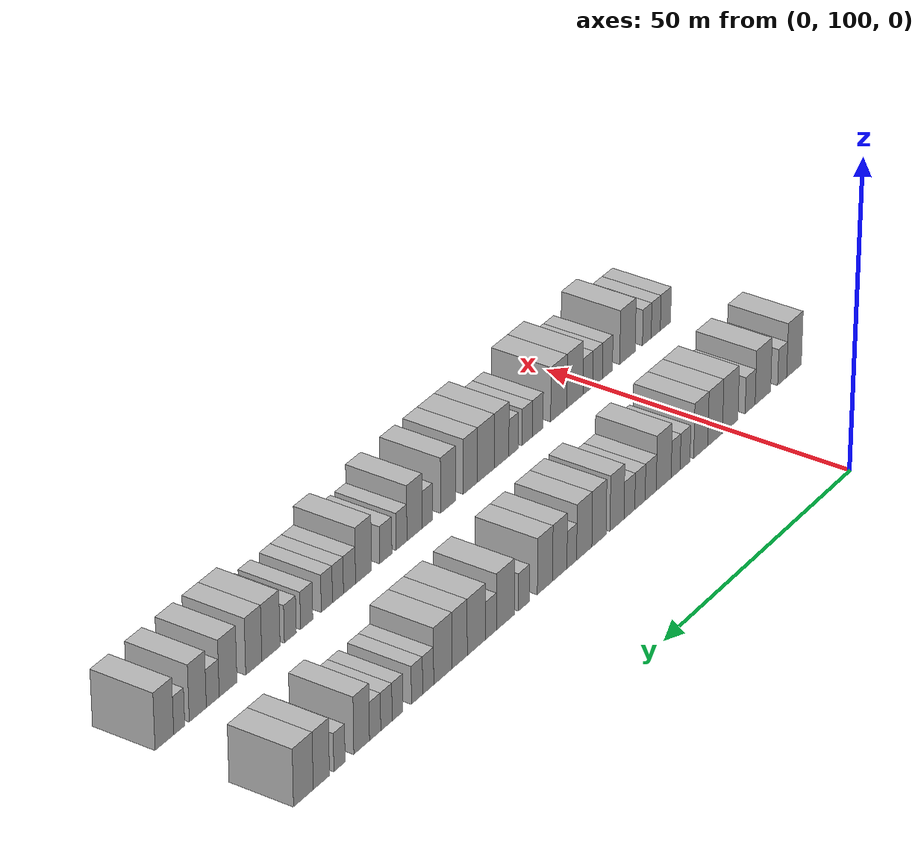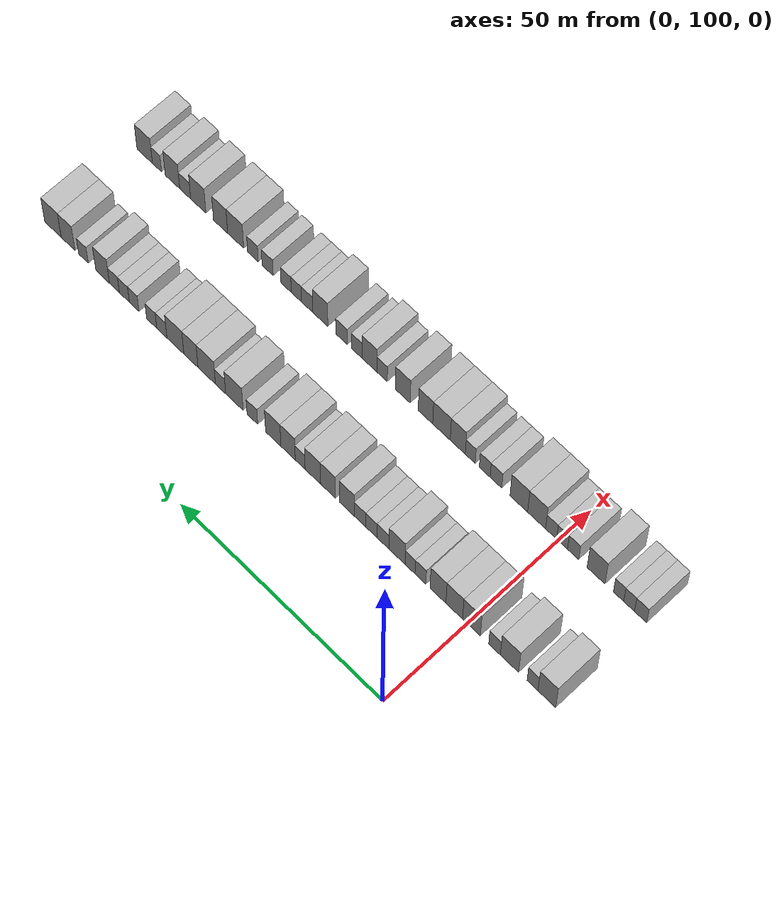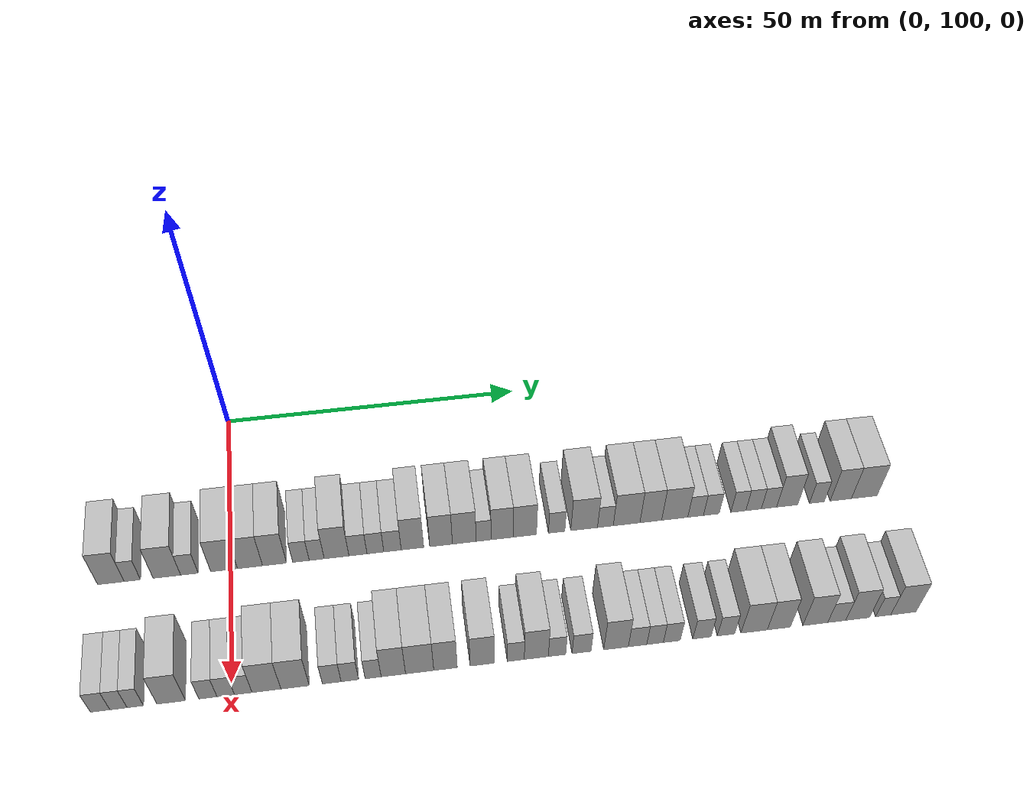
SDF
<sdf version="1.6">
 <world name="default">
  <model name="building_64">
   <static>1</static>
   <pose>25.0000 81.0686 0 0.000000 0.000000 0.000000</pose>
   <link name="link">
    <pose>0 0 4.50 0 0 0</pose>
    <collision name="collision"><geometry><box><size>10.0000 4.2000 9.0000</size></box></geometry></collision>
    <visual name="visual">
     <cast_shadows>0</cast_shadows>
     <geometry><box><size>10.0000 4.2000 9.0000</size></box></geometry>
     <material>
      <script>
       <uri>model://HANNAS_wall/materials/scripts</uri>
       <uri>model://HANNAS_wall/materials/textures</uri>
       <name>vrc/HANNAS_wall</name>
      </script>
     </material>
    </visual>
   </link>
  </model>
  <model name="building_65">
   <static>1</static>
   <pose>25.0000 84.4475 0 0.000000 0.000000 0.000000</pose>
   <link name="link">
    <pose>0 0 3.00 0 0 0</pose>
    <collision name="collision"><geometry><box><size>10.0000 2.5578 6.0000</size></box></geometry></collision>
    <visual name="visual">
     <cast_shadows>0</cast_shadows>
     <geometry><box><size>10.0000 2.5578 6.0000</size></box></geometry>
     <material>
      <script>
       <uri>model://HANNAS_wall/materials/scripts</uri>
       <uri>model://HANNAS_wall/materials/textures</uri>
       <name>vrc/HANNAS_wall</name>
      </script>
     </material>
    </visual>
   </link>
  </model>
  <model name="building_66">
   <static>1</static>
   <pose>25.0000 89.9106 0 0.000000 0.000000 0.000000</pose>
   <link name="link">
    <pose>0 0 4.50 0 0 0</pose>
    <collision name="collision"><geometry><box><size>10.0000 4.3684 9.0000</size></box></geometry></collision>
    <visual name="visual">
     <cast_shadows>0</cast_shadows>
     <geometry><box><size>10.0000 4.3684 9.0000</size></box></geometry>
     <material>
      <script>
       <uri>model://HANNAS_wall/materials/scripts</uri>
       <uri>model://HANNAS_wall/materials/textures</uri>
       <name>vrc/HANNAS_wall</name>
      </script>
     </material>
    </visual>
   </link>
  </model>
  <model name="building_67">
   <static>1</static>
   <pose>25.0000 93.4917 0 0.000000 0.000000 0.000000</pose>
   <link name="link">
    <pose>0 0 3.00 0 0 0</pose>
    <collision name="collision"><geometry><box><size>10.0000 2.7939 6.0000</size></box></geometry></collision>
    <visual name="visual">
     <cast_shadows>0</cast_shadows>
     <geometry><box><size>10.0000 2.7939 6.0000</size></box></geometry>
     <material>
      <script>
       <uri>model://HANNAS_wall/materials/scripts</uri>
       <uri>model://HANNAS_wall/materials/textures</uri>
       <name>vrc/HANNAS_wall</name>
      </script>
     </material>
    </visual>
   </link>
  </model>
  <model name="building_68">
   <static>1</static>
   <pose>25.0000 99.0275 0 0.000000 0.000000 0.000000</pose>
   <link name="link">
    <pose>0 0 4.50 0 0 0</pose>
    <collision name="collision"><geometry><box><size>10.0000 4.2777 9.0000</size></box></geometry></collision>
    <visual name="visual">
     <cast_shadows>0</cast_shadows>
     <geometry><box><size>10.0000 4.2777 9.0000</size></box></geometry>
     <material>
      <script>
       <uri>model://HANNAS_wall/materials/scripts</uri>
       <uri>model://HANNAS_wall/materials/textures</uri>
       <name>vrc/HANNAS_wall</name>
      </script>
     </material>
    </visual>
   </link>
  </model>
  <model name="building_69">
   <static>1</static>
   <pose>25.0000 103.1807 0 0.000000 0.000000 0.000000</pose>
   <link name="link">
    <pose>0 0 4.50 0 0 0</pose>
    <collision name="collision"><geometry><box><size>10.0000 4.0286 9.0000</size></box></geometry></collision>
    <visual name="visual">
     <cast_shadows>0</cast_shadows>
     <geometry><box><size>10.0000 4.0286 9.0000</size></box></geometry>
     <material>
      <script>
       <uri>model://HANNAS_wall/materials/scripts</uri>
       <uri>model://HANNAS_wall/materials/textures</uri>
       <name>vrc/HANNAS_wall</name>
      </script>
     </material>
    </visual>
   </link>
  </model>
  <model name="building_70">
   <static>1</static>
   <pose>25.0000 107.1229 0 0.000000 0.000000 0.000000</pose>
   <link name="link">
    <pose>0 0 4.50 0 0 0</pose>
    <collision name="collision"><geometry><box><size>10.0000 3.8557 9.0000</size></box></geometry></collision>
    <visual name="visual">
     <cast_shadows>0</cast_shadows>
     <geometry><box><size>10.0000 3.8557 9.0000</size></box></geometry>
     <material>
      <script>
       <uri>model://HANNAS_wall/materials/scripts</uri>
       <uri>model://HANNAS_wall/materials/textures</uri>
       <name>vrc/HANNAS_wall</name>
      </script>
     </material>
    </visual>
   </link>
  </model>
  <model name="building_71">
   <static>1</static>
   <pose>25.0000 111.3822 0 0.000000 0.000000 0.000000</pose>
   <link name="link">
    <pose>0 0 3.00 0 0 0</pose>
    <collision name="collision"><geometry><box><size>10.0000 2.6631 6.0000</size></box></geometry></collision>
    <visual name="visual">
     <cast_shadows>0</cast_shadows>
     <geometry><box><size>10.0000 2.6631 6.0000</size></box></geometry>
     <material>
      <script>
       <uri>model://HANNAS_wall/materials/scripts</uri>
       <uri>model://HANNAS_wall/materials/textures</uri>
       <name>vrc/HANNAS_wall</name>
      </script>
     </material>
    </visual>
   </link>
  </model>
  <model name="building_72">
   <static>1</static>
   <pose>25.0000 113.9192 0 0.000000 0.000000 0.000000</pose>
   <link name="link">
    <pose>0 0 3.00 0 0 0</pose>
    <collision name="collision"><geometry><box><size>10.0000 2.4109 6.0000</size></box></geometry></collision>
    <visual name="visual">
     <cast_shadows>0</cast_shadows>
     <geometry><box><size>10.0000 2.4109 6.0000</size></box></geometry>
     <material>
      <script>
       <uri>model://HANNAS_wall/materials/scripts</uri>
       <uri>model://HANNAS_wall/materials/textures</uri>
       <name>vrc/HANNAS_wall</name>
      </script>
     </material>
    </visual>
   </link>
  </model>
  <model name="building_73">
   <static>1</static>
   <pose>25.0000 117.1263 0 0.000000 0.000000 0.000000</pose>
   <link name="link">
    <pose>0 0 4.50 0 0 0</pose>
    <collision name="collision"><geometry><box><size>10.0000 4.0032 9.0000</size></box></geometry></collision>
    <visual name="visual">
     <cast_shadows>0</cast_shadows>
     <geometry><box><size>10.0000 4.0032 9.0000</size></box></geometry>
     <material>
      <script>
       <uri>model://HANNAS_wall/materials/scripts</uri>
       <uri>model://HANNAS_wall/materials/textures</uri>
       <name>vrc/HANNAS_wall</name>
      </script>
     </material>
    </visual>
   </link>
  </model>
  <model name="building_74">
   <static>1</static>
   <pose>25.0000 120.5967 0 0.000000 0.000000 0.000000</pose>
   <link name="link">
    <pose>0 0 3.00 0 0 0</pose>
    <collision name="collision"><geometry><box><size>10.0000 2.9376 6.0000</size></box></geometry></collision>
    <visual name="visual">
     <cast_shadows>0</cast_shadows>
     <geometry><box><size>10.0000 2.9376 6.0000</size></box></geometry>
     <material>
      <script>
       <uri>model://HANNAS_wall/materials/scripts</uri>
       <uri>model://HANNAS_wall/materials/textures</uri>
       <name>vrc/HANNAS_wall</name>
      </script>
     </material>
    </visual>
   </link>
  </model>
  <model name="building_75">
   <static>1</static>
   <pose>25.0000 123.4349 0 0.000000 0.000000 0.000000</pose>
   <link name="link">
    <pose>0 0 3.00 0 0 0</pose>
    <collision name="collision"><geometry><box><size>10.0000 2.7389 6.0000</size></box></geometry></collision>
    <visual name="visual">
     <cast_shadows>0</cast_shadows>
     <geometry><box><size>10.0000 2.7389 6.0000</size></box></geometry>
     <material>
      <script>
       <uri>model://HANNAS_wall/materials/scripts</uri>
       <uri>model://HANNAS_wall/materials/textures</uri>
       <name>vrc/HANNAS_wall</name>
      </script>
     </material>
    </visual>
   </link>
  </model>
  <model name="building_76">
   <static>1</static>
   <pose>25.0000 126.2245 0 0.000000 0.000000 0.000000</pose>
   <link name="link">
    <pose>0 0 3.00 0 0 0</pose>
    <collision name="collision"><geometry><box><size>10.0000 2.8404 6.0000</size></box></geometry></collision>
    <visual name="visual">
     <cast_shadows>0</cast_shadows>
     <geometry><box><size>10.0000 2.8404 6.0000</size></box></geometry>
     <material>
      <script>
       <uri>model://HANNAS_wall/materials/scripts</uri>
       <uri>model://HANNAS_wall/materials/textures</uri>
       <name>vrc/HANNAS_wall</name>
      </script>
     </material>
    </visual>
   </link>
  </model>
  <model name="building_77">
   <static>1</static>
   <pose>25.0000 129.4767 0 0.000000 0.000000 0.000000</pose>
   <link name="link">
    <pose>0 0 4.50 0 0 0</pose>
    <collision name="collision"><geometry><box><size>10.0000 3.6639 9.0000</size></box></geometry></collision>
    <visual name="visual">
     <cast_shadows>0</cast_shadows>
     <geometry><box><size>10.0000 3.6639 9.0000</size></box></geometry>
     <material>
      <script>
       <uri>model://HANNAS_wall/materials/scripts</uri>
       <uri>model://HANNAS_wall/materials/textures</uri>
       <name>vrc/HANNAS_wall</name>
      </script>
     </material>
    </visual>
   </link>
  </model>
  <model name="building_78">
   <static>1</static>
   <pose>25.0000 134.1608 0 0.000000 0.000000 0.000000</pose>
   <link name="link">
    <pose>0 0 4.50 0 0 0</pose>
    <collision name="collision"><geometry><box><size>10.0000 3.7043 9.0000</size></box></geometry></collision>
    <visual name="visual">
     <cast_shadows>0</cast_shadows>
     <geometry><box><size>10.0000 3.7043 9.0000</size></box></geometry>
     <material>
      <script>
       <uri>model://HANNAS_wall/materials/scripts</uri>
       <uri>model://HANNAS_wall/materials/textures</uri>
       <name>vrc/HANNAS_wall</name>
      </script>
     </material>
    </visual>
   </link>
  </model>
  <model name="building_79">
   <static>1</static>
   <pose>25.0000 137.9631 0 0.000000 0.000000 0.000000</pose>
   <link name="link">
    <pose>0 0 4.50 0 0 0</pose>
    <collision name="collision"><geometry><box><size>10.0000 3.9004 9.0000</size></box></geometry></collision>
    <visual name="visual">
     <cast_shadows>0</cast_shadows>
     <geometry><box><size>10.0000 3.9004 9.0000</size></box></geometry>
     <material>
      <script>
       <uri>model://HANNAS_wall/materials/scripts</uri>
       <uri>model://HANNAS_wall/materials/textures</uri>
       <name>vrc/HANNAS_wall</name>
      </script>
     </material>
    </visual>
   </link>
  </model>
  <model name="building_80">
   <static>1</static>
   <pose>25.0000 141.1476 0 0.000000 0.000000 0.000000</pose>
   <link name="link">
    <pose>0 0 3.00 0 0 0</pose>
    <collision name="collision"><geometry><box><size>10.0000 2.4687 6.0000</size></box></geometry></collision>
    <visual name="visual">
     <cast_shadows>0</cast_shadows>
     <geometry><box><size>10.0000 2.4687 6.0000</size></box></geometry>
     <material>
      <script>
       <uri>model://HANNAS_wall/materials/scripts</uri>
       <uri>model://HANNAS_wall/materials/textures</uri>
       <name>vrc/HANNAS_wall</name>
      </script>
     </material>
    </visual>
   </link>
  </model>
  <model name="building_81">
   <static>1</static>
   <pose>25.0000 144.2015 0 0.000000 0.000000 0.000000</pose>
   <link name="link">
    <pose>0 0 4.50 0 0 0</pose>
    <collision name="collision"><geometry><box><size>10.0000 3.6392 9.0000</size></box></geometry></collision>
    <visual name="visual">
     <cast_shadows>0</cast_shadows>
     <geometry><box><size>10.0000 3.6392 9.0000</size></box></geometry>
     <material>
      <script>
       <uri>model://HANNAS_wall/materials/scripts</uri>
       <uri>model://HANNAS_wall/materials/textures</uri>
       <name>vrc/HANNAS_wall</name>
      </script>
     </material>
    </visual>
   </link>
  </model>
  <model name="building_82">
   <static>1</static>
   <pose>25.0000 147.9535 0 0.000000 0.000000 0.000000</pose>
   <link name="link">
    <pose>0 0 4.50 0 0 0</pose>
    <collision name="collision"><geometry><box><size>10.0000 3.8648 9.0000</size></box></geometry></collision>
    <visual name="visual">
     <cast_shadows>0</cast_shadows>
     <geometry><box><size>10.0000 3.8648 9.0000</size></box></geometry>
     <material>
      <script>
       <uri>model://HANNAS_wall/materials/scripts</uri>
       <uri>model://HANNAS_wall/materials/textures</uri>
       <name>vrc/HANNAS_wall</name>
      </script>
     </material>
    </visual>
   </link>
  </model>
  <model name="building_83">
   <static>1</static>
   <pose>25.0000 153.2481 0 0.000000 0.000000 0.000000</pose>
   <link name="link">
    <pose>0 0 3.00 0 0 0</pose>
    <collision name="collision"><geometry><box><size>10.0000 2.7243 6.0000</size></box></geometry></collision>
    <visual name="visual">
     <cast_shadows>0</cast_shadows>
     <geometry><box><size>10.0000 2.7243 6.0000</size></box></geometry>
     <material>
      <script>
       <uri>model://HANNAS_wall/materials/scripts</uri>
       <uri>model://HANNAS_wall/materials/textures</uri>
       <name>vrc/HANNAS_wall</name>
      </script>
     </material>
    </visual>
   </link>
  </model>
  <model name="building_84">
   <static>1</static>
   <pose>25.0000 157.8373 0 0.000000 0.000000 0.000000</pose>
   <link name="link">
    <pose>0 0 4.50 0 0 0</pose>
    <collision name="collision"><geometry><box><size>10.0000 4.4540 9.0000</size></box></geometry></collision>
    <visual name="visual">
     <cast_shadows>0</cast_shadows>
     <geometry><box><size>10.0000 4.4540 9.0000</size></box></geometry>
     <material>
      <script>
       <uri>model://HANNAS_wall/materials/scripts</uri>
       <uri>model://HANNAS_wall/materials/textures</uri>
       <name>vrc/HANNAS_wall</name>
      </script>
     </material>
    </visual>
   </link>
  </model>
  <model name="building_85">
   <static>1</static>
   <pose>25.0000 161.3797 0 0.000000 0.000000 0.000000</pose>
   <link name="link">
    <pose>0 0 3.00 0 0 0</pose>
    <collision name="collision"><geometry><box><size>10.0000 2.6309 6.0000</size></box></geometry></collision>
    <visual name="visual">
     <cast_shadows>0</cast_shadows>
     <geometry><box><size>10.0000 2.6309 6.0000</size></box></geometry>
     <material>
      <script>
       <uri>model://HANNAS_wall/materials/scripts</uri>
       <uri>model://HANNAS_wall/materials/textures</uri>
       <name>vrc/HANNAS_wall</name>
      </script>
     </material>
    </visual>
   </link>
  </model>
  <model name="building_86">
   <static>1</static>
   <pose>25.0000 164.9365 0 0.000000 0.000000 0.000000</pose>
   <link name="link">
    <pose>0 0 4.50 0 0 0</pose>
    <collision name="collision"><geometry><box><size>10.0000 4.4827 9.0000</size></box></geometry></collision>
    <visual name="visual">
     <cast_shadows>0</cast_shadows>
     <geometry><box><size>10.0000 4.4827 9.0000</size></box></geometry>
     <material>
      <script>
       <uri>model://HANNAS_wall/materials/scripts</uri>
       <uri>model://HANNAS_wall/materials/textures</uri>
       <name>vrc/HANNAS_wall</name>
      </script>
     </material>
    </visual>
   </link>
  </model>
  <model name="building_87">
   <static>1</static>
   <pose>25.0000 169.0080 0 0.000000 0.000000 0.000000</pose>
   <link name="link">
    <pose>0 0 4.50 0 0 0</pose>
    <collision name="collision"><geometry><box><size>10.0000 3.6604 9.0000</size></box></geometry></collision>
    <visual name="visual">
     <cast_shadows>0</cast_shadows>
     <geometry><box><size>10.0000 3.6604 9.0000</size></box></geometry>
     <material>
      <script>
       <uri>model://HANNAS_wall/materials/scripts</uri>
       <uri>model://HANNAS_wall/materials/textures</uri>
       <name>vrc/HANNAS_wall</name>
      </script>
     </material>
    </visual>
   </link>
  </model>
  <model name="building_88">
   <static>1</static>
   <pose>25.0000 173.0416 0 0.000000 0.000000 0.000000</pose>
   <link name="link">
    <pose>0 0 4.50 0 0 0</pose>
    <collision name="collision"><geometry><box><size>10.0000 4.4069 9.0000</size></box></geometry></collision>
    <visual name="visual">
     <cast_shadows>0</cast_shadows>
     <geometry><box><size>10.0000 4.4069 9.0000</size></box></geometry>
     <material>
      <script>
       <uri>model://HANNAS_wall/materials/scripts</uri>
       <uri>model://HANNAS_wall/materials/textures</uri>
       <name>vrc/HANNAS_wall</name>
      </script>
     </material>
    </visual>
   </link>
  </model>
  <model name="building_89">
   <static>1</static>
   <pose>25.0000 176.5670 0 0.000000 0.000000 0.000000</pose>
   <link name="link">
    <pose>0 0 3.00 0 0 0</pose>
    <collision name="collision"><geometry><box><size>10.0000 2.6438 6.0000</size></box></geometry></collision>
    <visual name="visual">
     <cast_shadows>0</cast_shadows>
     <geometry><box><size>10.0000 2.6438 6.0000</size></box></geometry>
     <material>
      <script>
       <uri>model://HANNAS_wall/materials/scripts</uri>
       <uri>model://HANNAS_wall/materials/textures</uri>
       <name>vrc/HANNAS_wall</name>
      </script>
     </material>
    </visual>
   </link>
  </model>
  <model name="building_90">
   <static>1</static>
   <pose>25.0000 179.2157 0 0.000000 0.000000 0.000000</pose>
   <link name="link">
    <pose>0 0 3.00 0 0 0</pose>
    <collision name="collision"><geometry><box><size>10.0000 2.6537 6.0000</size></box></geometry></collision>
    <visual name="visual">
     <cast_shadows>0</cast_shadows>
     <geometry><box><size>10.0000 2.6537 6.0000</size></box></geometry>
     <material>
      <script>
       <uri>model://HANNAS_wall/materials/scripts</uri>
       <uri>model://HANNAS_wall/materials/textures</uri>
       <name>vrc/HANNAS_wall</name>
      </script>
     </material>
    </visual>
   </link>
  </model>
  <model name="building_91">
   <static>1</static>
   <pose>25.0000 183.8110 0 0.000000 0.000000 0.000000</pose>
   <link name="link">
    <pose>0 0 3.00 0 0 0</pose>
    <collision name="collision"><geometry><box><size>10.0000 2.5369 6.0000</size></box></geometry></collision>
    <visual name="visual">
     <cast_shadows>0</cast_shadows>
     <geometry><box><size>10.0000 2.5369 6.0000</size></box></geometry>
     <material>
      <script>
       <uri>model://HANNAS_wall/materials/scripts</uri>
       <uri>model://HANNAS_wall/materials/textures</uri>
       <name>vrc/HANNAS_wall</name>
      </script>
     </material>
    </visual>
   </link>
  </model>
  <model name="building_92">
   <static>1</static>
   <pose>25.0000 186.4007 0 0.000000 0.000000 0.000000</pose>
   <link name="link">
    <pose>0 0 3.00 0 0 0</pose>
    <collision name="collision"><geometry><box><size>10.0000 2.6425 6.0000</size></box></geometry></collision>
    <visual name="visual">
     <cast_shadows>0</cast_shadows>
     <geometry><box><size>10.0000 2.6425 6.0000</size></box></geometry>
     <material>
      <script>
       <uri>model://HANNAS_wall/materials/scripts</uri>
       <uri>model://HANNAS_wall/materials/textures</uri>
       <name>vrc/HANNAS_wall</name>
      </script>
     </material>
    </visual>
   </link>
  </model>
  <model name="building_93">
   <static>1</static>
   <pose>25.0000 189.0300 0 0.000000 0.000000 0.000000</pose>
   <link name="link">
    <pose>0 0 3.00 0 0 0</pose>
    <collision name="collision"><geometry><box><size>10.0000 2.6161 6.0000</size></box></geometry></collision>
    <visual name="visual">
     <cast_shadows>0</cast_shadows>
     <geometry><box><size>10.0000 2.6161 6.0000</size></box></geometry>
     <material>
      <script>
       <uri>model://HANNAS_wall/materials/scripts</uri>
       <uri>model://HANNAS_wall/materials/textures</uri>
       <name>vrc/HANNAS_wall</name>
      </script>
     </material>
    </visual>
   </link>
  </model>
  <model name="building_94">
   <static>1</static>
   <pose>25.0000 192.1440 0 0.000000 0.000000 0.000000</pose>
   <link name="link">
    <pose>0 0 4.50 0 0 0</pose>
    <collision name="collision"><geometry><box><size>10.0000 3.6119 9.0000</size></box></geometry></collision>
    <visual name="visual">
     <cast_shadows>0</cast_shadows>
     <geometry><box><size>10.0000 3.6119 9.0000</size></box></geometry>
     <material>
      <script>
       <uri>model://HANNAS_wall/materials/scripts</uri>
       <uri>model://HANNAS_wall/materials/textures</uri>
       <name>vrc/HANNAS_wall</name>
      </script>
     </material>
    </visual>
   </link>
  </model>
  <model name="building_95">
   <static>1</static>
   <pose>25.0000 197.2304 0 0.000000 0.000000 0.000000</pose>
   <link name="link">
    <pose>0 0 3.00 0 0 0</pose>
    <collision name="collision"><geometry><box><size>10.0000 2.5607 6.0000</size></box></geometry></collision>
    <visual name="visual">
     <cast_shadows>0</cast_shadows>
     <geometry><box><size>10.0000 2.5607 6.0000</size></box></geometry>
     <material>
      <script>
       <uri>model://HANNAS_wall/materials/scripts</uri>
       <uri>model://HANNAS_wall/materials/textures</uri>
       <name>vrc/HANNAS_wall</name>
      </script>
     </material>
    </visual>
   </link>
  </model>
  <model name="building_96">
   <static>1</static>
   <pose>25.0000 201.3448 0 0.000000 0.000000 0.000000</pose>
   <link name="link">
    <pose>0 0 4.50 0 0 0</pose>
    <collision name="collision"><geometry><box><size>10.0000 3.6681 9.0000</size></box></geometry></collision>
    <visual name="visual">
     <cast_shadows>0</cast_shadows>
     <geometry><box><size>10.0000 3.6681 9.0000</size></box></geometry>
     <material>
      <script>
       <uri>model://HANNAS_wall/materials/scripts</uri>
       <uri>model://HANNAS_wall/materials/textures</uri>
       <name>vrc/HANNAS_wall</name>
      </script>
     </material>
    </visual>
   </link>
  </model>
  <model name="building_97">
   <static>1</static>
   <pose>25.0000 205.3936 0 0.000000 0.000000 0.000000</pose>
   <link name="link">
    <pose>0 0 4.50 0 0 0</pose>
    <collision name="collision"><geometry><box><size>10.0000 4.4295 9.0000</size></box></geometry></collision>
    <visual name="visual">
     <cast_shadows>0</cast_shadows>
     <geometry><box><size>10.0000 4.4295 9.0000</size></box></geometry>
     <material>
      <script>
       <uri>model://HANNAS_wall/materials/scripts</uri>
       <uri>model://HANNAS_wall/materials/textures</uri>
       <name>vrc/HANNAS_wall</name>
      </script>
     </material>
    </visual>
   </link>
  </model>
  <model name="building_169">
   <static>1</static>
   <pose>47.0000 80.3723 0 0.000000 0.000000 0.000000</pose>
   <link name="link">
    <pose>0 0 3.00 0 0 0</pose>
    <collision name="collision"><geometry><box><size>10.0000 2.8986 6.0000</size></box></geometry></collision>
    <visual name="visual">
     <cast_shadows>0</cast_shadows>
     <geometry><box><size>10.0000 2.8986 6.0000</size></box></geometry>
     <material>
      <script>
       <uri>model://HANNAS_wall/materials/scripts</uri>
       <uri>model://HANNAS_wall/materials/textures</uri>
       <name>vrc/HANNAS_wall</name>
      </script>
     </material>
    </visual>
   </link>
  </model>
  <model name="building_170">
   <static>1</static>
   <pose>47.0000 83.0915 0 0.000000 0.000000 0.000000</pose>
   <link name="link">
    <pose>0 0 3.00 0 0 0</pose>
    <collision name="collision"><geometry><box><size>10.0000 2.5398 6.0000</size></box></geometry></collision>
    <visual name="visual">
     <cast_shadows>0</cast_shadows>
     <geometry><box><size>10.0000 2.5398 6.0000</size></box></geometry>
     <material>
      <script>
       <uri>model://HANNAS_wall/materials/scripts</uri>
       <uri>model://HANNAS_wall/materials/textures</uri>
       <name>vrc/HANNAS_wall</name>
      </script>
     </material>
    </visual>
   </link>
  </model>
  <model name="building_171">
   <static>1</static>
   <pose>47.0000 85.5804 0 0.000000 0.000000 0.000000</pose>
   <link name="link">
    <pose>0 0 3.00 0 0 0</pose>
    <collision name="collision"><geometry><box><size>10.0000 2.4381 6.0000</size></box></geometry></collision>
    <visual name="visual">
     <cast_shadows>0</cast_shadows>
     <geometry><box><size>10.0000 2.4381 6.0000</size></box></geometry>
     <material>
      <script>
       <uri>model://HANNAS_wall/materials/scripts</uri>
       <uri>model://HANNAS_wall/materials/textures</uri>
       <name>vrc/HANNAS_wall</name>
      </script>
     </material>
    </visual>
   </link>
  </model>
  <model name="building_172">
   <static>1</static>
   <pose>47.0000 90.9304 0 0.000000 0.000000 0.000000</pose>
   <link name="link">
    <pose>0 0 4.50 0 0 0</pose>
    <collision name="collision"><geometry><box><size>10.0000 4.2618 9.0000</size></box></geometry></collision>
    <visual name="visual">
     <cast_shadows>0</cast_shadows>
     <geometry><box><size>10.0000 4.2618 9.0000</size></box></geometry>
     <material>
      <script>
       <uri>model://HANNAS_wall/materials/scripts</uri>
       <uri>model://HANNAS_wall/materials/textures</uri>
       <name>vrc/HANNAS_wall</name>
      </script>
     </material>
    </visual>
   </link>
  </model>
  <model name="building_173">
   <static>1</static>
   <pose>47.0000 96.4199 0 0.000000 0.000000 0.000000</pose>
   <link name="link">
    <pose>0 0 3.00 0 0 0</pose>
    <collision name="collision"><geometry><box><size>10.0000 2.7173 6.0000</size></box></geometry></collision>
    <visual name="visual">
     <cast_shadows>0</cast_shadows>
     <geometry><box><size>10.0000 2.7173 6.0000</size></box></geometry>
     <material>
      <script>
       <uri>model://HANNAS_wall/materials/scripts</uri>
       <uri>model://HANNAS_wall/materials/textures</uri>
       <name>vrc/HANNAS_wall</name>
      </script>
     </material>
    </visual>
   </link>
  </model>
  <model name="building_174">
   <static>1</static>
   <pose>47.0000 99.0839 0 0.000000 0.000000 0.000000</pose>
   <link name="link">
    <pose>0 0 3.00 0 0 0</pose>
    <collision name="collision"><geometry><box><size>10.0000 2.6107 6.0000</size></box></geometry></collision>
    <visual name="visual">
     <cast_shadows>0</cast_shadows>
     <geometry><box><size>10.0000 2.6107 6.0000</size></box></geometry>
     <material>
      <script>
       <uri>model://HANNAS_wall/materials/scripts</uri>
       <uri>model://HANNAS_wall/materials/textures</uri>
       <name>vrc/HANNAS_wall</name>
      </script>
     </material>
    </visual>
   </link>
  </model>
  <model name="building_175">
   <static>1</static>
   <pose>47.0000 101.7155 0 0.000000 0.000000 0.000000</pose>
   <link name="link">
    <pose>0 0 3.00 0 0 0</pose>
    <collision name="collision"><geometry><box><size>10.0000 2.6524 6.0000</size></box></geometry></collision>
    <visual name="visual">
     <cast_shadows>0</cast_shadows>
     <geometry><box><size>10.0000 2.6524 6.0000</size></box></geometry>
     <material>
      <script>
       <uri>model://HANNAS_wall/materials/scripts</uri>
       <uri>model://HANNAS_wall/materials/textures</uri>
       <name>vrc/HANNAS_wall</name>
      </script>
     </material>
    </visual>
   </link>
  </model>
  <model name="building_176">
   <static>1</static>
   <pose>47.0000 105.2149 0 0.000000 0.000000 0.000000</pose>
   <link name="link">
    <pose>0 0 4.50 0 0 0</pose>
    <collision name="collision"><geometry><box><size>10.0000 4.3464 9.0000</size></box></geometry></collision>
    <visual name="visual">
     <cast_shadows>0</cast_shadows>
     <geometry><box><size>10.0000 4.3464 9.0000</size></box></geometry>
     <material>
      <script>
       <uri>model://HANNAS_wall/materials/scripts</uri>
       <uri>model://HANNAS_wall/materials/textures</uri>
       <name>vrc/HANNAS_wall</name>
      </script>
     </material>
    </visual>
   </link>
  </model>
  <model name="building_177">
   <static>1</static>
   <pose>47.0000 109.5361 0 0.000000 0.000000 0.000000</pose>
   <link name="link">
    <pose>0 0 4.50 0 0 0</pose>
    <collision name="collision"><geometry><box><size>10.0000 4.2959 9.0000</size></box></geometry></collision>
    <visual name="visual">
     <cast_shadows>0</cast_shadows>
     <geometry><box><size>10.0000 4.2959 9.0000</size></box></geometry>
     <material>
      <script>
       <uri>model://HANNAS_wall/materials/scripts</uri>
       <uri>model://HANNAS_wall/materials/textures</uri>
       <name>vrc/HANNAS_wall</name>
      </script>
     </material>
    </visual>
   </link>
  </model>
  <model name="building_178">
   <static>1</static>
   <pose>47.0000 115.1081 0 0.000000 0.000000 0.000000</pose>
   <link name="link">
    <pose>0 0 3.00 0 0 0</pose>
    <collision name="collision"><geometry><box><size>10.0000 2.8482 6.0000</size></box></geometry></collision>
    <visual name="visual">
     <cast_shadows>0</cast_shadows>
     <geometry><box><size>10.0000 2.8482 6.0000</size></box></geometry>
     <material>
      <script>
       <uri>model://HANNAS_wall/materials/scripts</uri>
       <uri>model://HANNAS_wall/materials/textures</uri>
       <name>vrc/HANNAS_wall</name>
      </script>
     </material>
    </visual>
   </link>
  </model>
  <model name="building_179">
   <static>1</static>
   <pose>47.0000 117.8596 0 0.000000 0.000000 0.000000</pose>
   <link name="link">
    <pose>0 0 3.00 0 0 0</pose>
    <collision name="collision"><geometry><box><size>10.0000 2.6547 6.0000</size></box></geometry></collision>
    <visual name="visual">
     <cast_shadows>0</cast_shadows>
     <geometry><box><size>10.0000 2.6547 6.0000</size></box></geometry>
     <material>
      <script>
       <uri>model://HANNAS_wall/materials/scripts</uri>
       <uri>model://HANNAS_wall/materials/textures</uri>
       <name>vrc/HANNAS_wall</name>
      </script>
     </material>
    </visual>
   </link>
  </model>
  <model name="building_180">
   <static>1</static>
   <pose>47.0000 121.4094 0 0.000000 0.000000 0.000000</pose>
   <link name="link">
    <pose>0 0 3.00 0 0 0</pose>
    <collision name="collision"><geometry><box><size>10.0000 2.4449 6.0000</size></box></geometry></collision>
    <visual name="visual">
     <cast_shadows>0</cast_shadows>
     <geometry><box><size>10.0000 2.4449 6.0000</size></box></geometry>
     <material>
      <script>
       <uri>model://HANNAS_wall/materials/scripts</uri>
       <uri>model://HANNAS_wall/materials/textures</uri>
       <name>vrc/HANNAS_wall</name>
      </script>
     </material>
    </visual>
   </link>
  </model>
  <model name="building_181">
   <static>1</static>
   <pose>47.0000 124.4994 0 0.000000 0.000000 0.000000</pose>
   <link name="link">
    <pose>0 0 4.50 0 0 0</pose>
    <collision name="collision"><geometry><box><size>10.0000 3.7352 9.0000</size></box></geometry></collision>
    <visual name="visual">
     <cast_shadows>0</cast_shadows>
     <geometry><box><size>10.0000 3.7352 9.0000</size></box></geometry>
     <material>
      <script>
       <uri>model://HANNAS_wall/materials/scripts</uri>
       <uri>model://HANNAS_wall/materials/textures</uri>
       <name>vrc/HANNAS_wall</name>
      </script>
     </material>
    </visual>
   </link>
  </model>
  <model name="building_182">
   <static>1</static>
   <pose>47.0000 128.5352 0 0.000000 0.000000 0.000000</pose>
   <link name="link">
    <pose>0 0 4.50 0 0 0</pose>
    <collision name="collision"><geometry><box><size>10.0000 4.3364 9.0000</size></box></geometry></collision>
    <visual name="visual">
     <cast_shadows>0</cast_shadows>
     <geometry><box><size>10.0000 4.3364 9.0000</size></box></geometry>
     <material>
      <script>
       <uri>model://HANNAS_wall/materials/scripts</uri>
       <uri>model://HANNAS_wall/materials/textures</uri>
       <name>vrc/HANNAS_wall</name>
      </script>
     </material>
    </visual>
   </link>
  </model>
  <model name="building_183">
   <static>1</static>
   <pose>47.0000 132.5084 0 0.000000 0.000000 0.000000</pose>
   <link name="link">
    <pose>0 0 4.50 0 0 0</pose>
    <collision name="collision"><geometry><box><size>10.0000 3.6100 9.0000</size></box></geometry></collision>
    <visual name="visual">
     <cast_shadows>0</cast_shadows>
     <geometry><box><size>10.0000 3.6100 9.0000</size></box></geometry>
     <material>
      <script>
       <uri>model://HANNAS_wall/materials/scripts</uri>
       <uri>model://HANNAS_wall/materials/textures</uri>
       <name>vrc/HANNAS_wall</name>
      </script>
     </material>
    </visual>
   </link>
  </model>
  <model name="building_184">
   <static>1</static>
   <pose>47.0000 138.1911 0 0.000000 0.000000 0.000000</pose>
   <link name="link">
    <pose>0 0 4.50 0 0 0</pose>
    <collision name="collision"><geometry><box><size>10.0000 3.7552 9.0000</size></box></geometry></collision>
    <visual name="visual">
     <cast_shadows>0</cast_shadows>
     <geometry><box><size>10.0000 3.7552 9.0000</size></box></geometry>
     <material>
      <script>
       <uri>model://HANNAS_wall/materials/scripts</uri>
       <uri>model://HANNAS_wall/materials/textures</uri>
       <name>vrc/HANNAS_wall</name>
      </script>
     </material>
    </visual>
   </link>
  </model>
  <model name="building_185">
   <static>1</static>
   <pose>47.0000 143.3799 0 0.000000 0.000000 0.000000</pose>
   <link name="link">
    <pose>0 0 3.00 0 0 0</pose>
    <collision name="collision"><geometry><box><size>10.0000 2.6224 6.0000</size></box></geometry></collision>
    <visual name="visual">
     <cast_shadows>0</cast_shadows>
     <geometry><box><size>10.0000 2.6224 6.0000</size></box></geometry>
     <material>
      <script>
       <uri>model://HANNAS_wall/materials/scripts</uri>
       <uri>model://HANNAS_wall/materials/textures</uri>
       <name>vrc/HANNAS_wall</name>
      </script>
     </material>
    </visual>
   </link>
  </model>
  <model name="building_186">
   <static>1</static>
   <pose>47.0000 146.5668 0 0.000000 0.000000 0.000000</pose>
   <link name="link">
    <pose>0 0 4.50 0 0 0</pose>
    <collision name="collision"><geometry><box><size>10.0000 3.7514 9.0000</size></box></geometry></collision>
    <visual name="visual">
     <cast_shadows>0</cast_shadows>
     <geometry><box><size>10.0000 3.7514 9.0000</size></box></geometry>
     <material>
      <script>
       <uri>model://HANNAS_wall/materials/scripts</uri>
       <uri>model://HANNAS_wall/materials/textures</uri>
       <name>vrc/HANNAS_wall</name>
      </script>
     </material>
    </visual>
   </link>
  </model>
  <model name="building_187">
   <static>1</static>
   <pose>47.0000 149.7954 0 0.000000 0.000000 0.000000</pose>
   <link name="link">
    <pose>0 0 3.00 0 0 0</pose>
    <collision name="collision"><geometry><box><size>10.0000 2.7059 6.0000</size></box></geometry></collision>
    <visual name="visual">
     <cast_shadows>0</cast_shadows>
     <geometry><box><size>10.0000 2.7059 6.0000</size></box></geometry>
     <material>
      <script>
       <uri>model://HANNAS_wall/materials/scripts</uri>
       <uri>model://HANNAS_wall/materials/textures</uri>
       <name>vrc/HANNAS_wall</name>
      </script>
     </material>
    </visual>
   </link>
  </model>
  <model name="building_188">
   <static>1</static>
   <pose>47.0000 153.6311 0 0.000000 0.000000 0.000000</pose>
   <link name="link">
    <pose>0 0 3.00 0 0 0</pose>
    <collision name="collision"><geometry><box><size>10.0000 2.9654 6.0000</size></box></geometry></collision>
    <visual name="visual">
     <cast_shadows>0</cast_shadows>
     <geometry><box><size>10.0000 2.9654 6.0000</size></box></geometry>
     <material>
      <script>
       <uri>model://HANNAS_wall/materials/scripts</uri>
       <uri>model://HANNAS_wall/materials/textures</uri>
       <name>vrc/HANNAS_wall</name>
      </script>
     </material>
    </visual>
   </link>
  </model>
  <model name="building_189">
   <static>1</static>
   <pose>47.0000 159.0507 0 0.000000 0.000000 0.000000</pose>
   <link name="link">
    <pose>0 0 4.50 0 0 0</pose>
    <collision name="collision"><geometry><box><size>10.0000 3.8739 9.0000</size></box></geometry></collision>
    <visual name="visual">
     <cast_shadows>0</cast_shadows>
     <geometry><box><size>10.0000 3.8739 9.0000</size></box></geometry>
     <material>
      <script>
       <uri>model://HANNAS_wall/materials/scripts</uri>
       <uri>model://HANNAS_wall/materials/textures</uri>
       <name>vrc/HANNAS_wall</name>
      </script>
     </material>
    </visual>
   </link>
  </model>
  <model name="building_190">
   <static>1</static>
   <pose>47.0000 162.4373 0 0.000000 0.000000 0.000000</pose>
   <link name="link">
    <pose>0 0 3.00 0 0 0</pose>
    <collision name="collision"><geometry><box><size>10.0000 2.8993 6.0000</size></box></geometry></collision>
    <visual name="visual">
     <cast_shadows>0</cast_shadows>
     <geometry><box><size>10.0000 2.8993 6.0000</size></box></geometry>
     <material>
      <script>
       <uri>model://HANNAS_wall/materials/scripts</uri>
       <uri>model://HANNAS_wall/materials/textures</uri>
       <name>vrc/HANNAS_wall</name>
      </script>
     </material>
    </visual>
   </link>
  </model>
  <model name="building_191">
   <static>1</static>
   <pose>47.0000 165.1999 0 0.000000 0.000000 0.000000</pose>
   <link name="link">
    <pose>0 0 3.00 0 0 0</pose>
    <collision name="collision"><geometry><box><size>10.0000 2.6258 6.0000</size></box></geometry></collision>
    <visual name="visual">
     <cast_shadows>0</cast_shadows>
     <geometry><box><size>10.0000 2.6258 6.0000</size></box></geometry>
     <material>
      <script>
       <uri>model://HANNAS_wall/materials/scripts</uri>
       <uri>model://HANNAS_wall/materials/textures</uri>
       <name>vrc/HANNAS_wall</name>
      </script>
     </material>
    </visual>
   </link>
  </model>
  <model name="building_192">
   <static>1</static>
   <pose>47.0000 167.8475 0 0.000000 0.000000 0.000000</pose>
   <link name="link">
    <pose>0 0 3.00 0 0 0</pose>
    <collision name="collision"><geometry><box><size>10.0000 2.6694 6.0000</size></box></geometry></collision>
    <visual name="visual">
     <cast_shadows>0</cast_shadows>
     <geometry><box><size>10.0000 2.6694 6.0000</size></box></geometry>
     <material>
      <script>
       <uri>model://HANNAS_wall/materials/scripts</uri>
       <uri>model://HANNAS_wall/materials/textures</uri>
       <name>vrc/HANNAS_wall</name>
      </script>
     </material>
    </visual>
   </link>
  </model>
  <model name="building_193">
   <static>1</static>
   <pose>47.0000 172.6245 0 0.000000 0.000000 0.000000</pose>
   <link name="link">
    <pose>0 0 3.00 0 0 0</pose>
    <collision name="collision"><geometry><box><size>10.0000 2.8846 6.0000</size></box></geometry></collision>
    <visual name="visual">
     <cast_shadows>0</cast_shadows>
     <geometry><box><size>10.0000 2.8846 6.0000</size></box></geometry>
     <material>
      <script>
       <uri>model://HANNAS_wall/materials/scripts</uri>
       <uri>model://HANNAS_wall/materials/textures</uri>
       <name>vrc/HANNAS_wall</name>
      </script>
     </material>
    </visual>
   </link>
  </model>
  <model name="building_194">
   <static>1</static>
   <pose>47.0000 176.4581 0 0.000000 0.000000 0.000000</pose>
   <link name="link">
    <pose>0 0 3.00 0 0 0</pose>
    <collision name="collision"><geometry><box><size>10.0000 2.7826 6.0000</size></box></geometry></collision>
    <visual name="visual">
     <cast_shadows>0</cast_shadows>
     <geometry><box><size>10.0000 2.7826 6.0000</size></box></geometry>
     <material>
      <script>
       <uri>model://HANNAS_wall/materials/scripts</uri>
       <uri>model://HANNAS_wall/materials/textures</uri>
       <name>vrc/HANNAS_wall</name>
      </script>
     </material>
    </visual>
   </link>
  </model>
  <model name="building_195">
   <static>1</static>
   <pose>47.0000 180.9576 0 0.000000 0.000000 0.000000</pose>
   <link name="link">
    <pose>0 0 4.50 0 0 0</pose>
    <collision name="collision"><geometry><box><size>10.0000 4.2164 9.0000</size></box></geometry></collision>
    <visual name="visual">
     <cast_shadows>0</cast_shadows>
     <geometry><box><size>10.0000 4.2164 9.0000</size></box></geometry>
     <material>
      <script>
       <uri>model://HANNAS_wall/materials/scripts</uri>
       <uri>model://HANNAS_wall/materials/textures</uri>
       <name>vrc/HANNAS_wall</name>
      </script>
     </material>
    </visual>
   </link>
  </model>
  <model name="building_196">
   <static>1</static>
   <pose>47.0000 184.9198 0 0.000000 0.000000 0.000000</pose>
   <link name="link">
    <pose>0 0 4.50 0 0 0</pose>
    <collision name="collision"><geometry><box><size>10.0000 3.7080 9.0000</size></box></geometry></collision>
    <visual name="visual">
     <cast_shadows>0</cast_shadows>
     <geometry><box><size>10.0000 3.7080 9.0000</size></box></geometry>
     <material>
      <script>
       <uri>model://HANNAS_wall/materials/scripts</uri>
       <uri>model://HANNAS_wall/materials/textures</uri>
       <name>vrc/HANNAS_wall</name>
      </script>
     </material>
    </visual>
   </link>
  </model>
  <model name="building_197">
   <static>1</static>
   <pose>47.0000 190.7872 0 0.000000 0.000000 0.000000</pose>
   <link name="link">
    <pose>0 0 4.50 0 0 0</pose>
    <collision name="collision"><geometry><box><size>10.0000 4.0268 9.0000</size></box></geometry></collision>
    <visual name="visual">
     <cast_shadows>0</cast_shadows>
     <geometry><box><size>10.0000 4.0268 9.0000</size></box></geometry>
     <material>
      <script>
       <uri>model://HANNAS_wall/materials/scripts</uri>
       <uri>model://HANNAS_wall/materials/textures</uri>
       <name>vrc/HANNAS_wall</name>
      </script>
     </material>
    </visual>
   </link>
  </model>
  <model name="building_198">
   <static>1</static>
   <pose>47.0000 194.2524 0 0.000000 0.000000 0.000000</pose>
   <link name="link">
    <pose>0 0 3.00 0 0 0</pose>
    <collision name="collision"><geometry><box><size>10.0000 2.9036 6.0000</size></box></geometry></collision>
    <visual name="visual">
     <cast_shadows>0</cast_shadows>
     <geometry><box><size>10.0000 2.9036 6.0000</size></box></geometry>
     <material>
      <script>
       <uri>model://HANNAS_wall/materials/scripts</uri>
       <uri>model://HANNAS_wall/materials/textures</uri>
       <name>vrc/HANNAS_wall</name>
      </script>
     </material>
    </visual>
   </link>
  </model>
  <model name="building_199">
   <static>1</static>
   <pose>47.0000 197.6211 0 0.000000 0.000000 0.000000</pose>
   <link name="link">
    <pose>0 0 4.50 0 0 0</pose>
    <collision name="collision"><geometry><box><size>10.0000 3.8339 9.0000</size></box></geometry></collision>
    <visual name="visual">
     <cast_shadows>0</cast_shadows>
     <geometry><box><size>10.0000 3.8339 9.0000</size></box></geometry>
     <material>
      <script>
       <uri>model://HANNAS_wall/materials/scripts</uri>
       <uri>model://HANNAS_wall/materials/textures</uri>
       <name>vrc/HANNAS_wall</name>
      </script>
     </material>
    </visual>
   </link>
  </model>
  <model name="building_200">
   <static>1</static>
   <pose>47.0000 201.7595 0 0.000000 0.000000 0.000000</pose>
   <link name="link">
    <pose>0 0 3.00 0 0 0</pose>
    <collision name="collision"><geometry><box><size>10.0000 2.4428 6.0000</size></box></geometry></collision>
    <visual name="visual">
     <cast_shadows>0</cast_shadows>
     <geometry><box><size>10.0000 2.4428 6.0000</size></box></geometry>
     <material>
      <script>
       <uri>model://HANNAS_wall/materials/scripts</uri>
       <uri>model://HANNAS_wall/materials/textures</uri>
       <name>vrc/HANNAS_wall</name>
      </script>
     </material>
    </visual>
   </link>
  </model>
  <model name="building_201">
   <static>1</static>
   <pose>47.0000 205.0429 0 0.000000 0.000000 0.000000</pose>
   <link name="link">
    <pose>0 0 4.50 0 0 0</pose>
    <collision name="collision"><geometry><box><size>10.0000 4.1241 9.0000</size></box></geometry></collision>
    <visual name="visual">
     <cast_shadows>0</cast_shadows>
     <geometry><box><size>10.0000 4.1241 9.0000</size></box></geometry>
     <material>
      <script>
       <uri>model://HANNAS_wall/materials/scripts</uri>
       <uri>model://HANNAS_wall/materials/textures</uri>
       <name>vrc/HANNAS_wall</name>
      </script>
     </material>
    </visual>
   </link>
  </model>
 </world>
</sdf>
